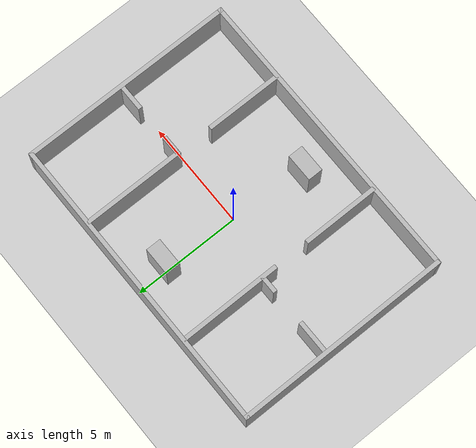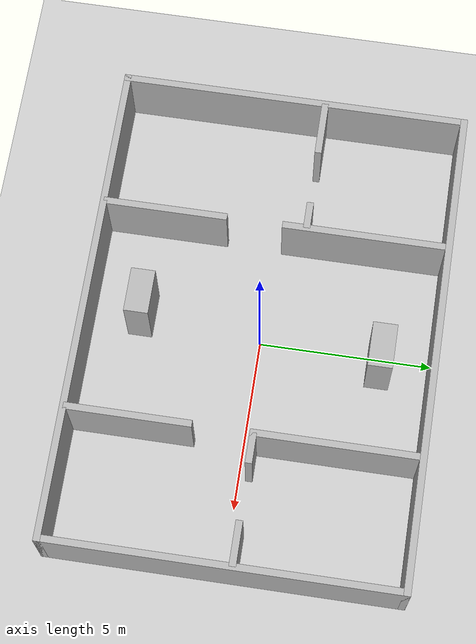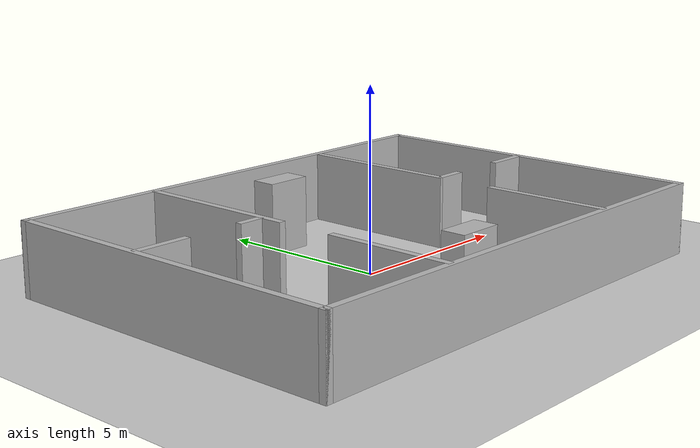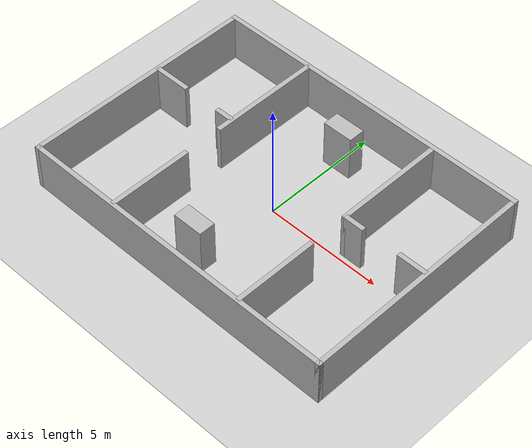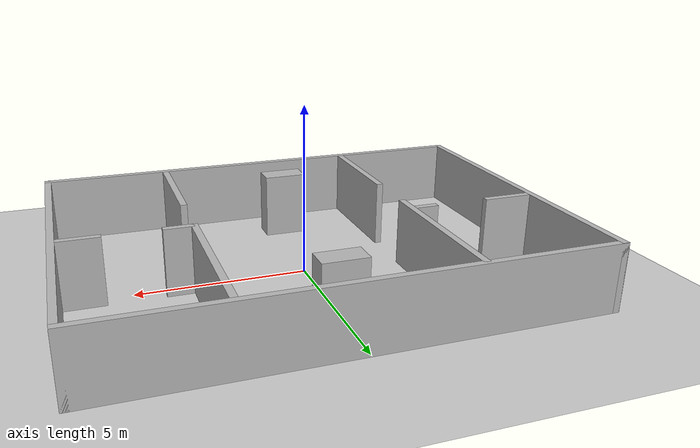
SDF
<sdf version='1.7'>
  <world name='mr3_validation_rooms'>
    <!-- mr3_box_layouts_v1; layout_seed=701; eval-only. -->
    <plugin name='gazebo_ros_state' filename='libgazebo_ros_state.so'>
      <ros><namespace>/gazebo</namespace></ros><update_rate>10.0</update_rate>
    </plugin>
    <include><uri>model://sun</uri></include>
    <include><uri>model://ground_plane</uri></include>
    <gravity>0 0 -9.8</gravity><physics type='ode'>
      <max_step_size>0.001</max_step_size><real_time_factor>1</real_time_factor>
      <real_time_update_rate>1000</real_time_update_rate></physics>
    <model name='task_geometry'><static>true</static><link name='boxes'>
      <collision name='north'><pose>0.000000 5.000000 1 0 0 0.000000</pose>
        <geometry><box><size>14.200000 0.200000 2</size></box></geometry></collision>
      <visual name='north_visual'><pose>0.000000 5.000000 1 0 0 0.000000</pose>
        <geometry><box><size>14.200000 0.200000 2</size></box></geometry></visual>
      <collision name='south'><pose>0.000000 -5.000000 1 0 0 0.000000</pose>
        <geometry><box><size>14.200000 0.200000 2</size></box></geometry></collision>
      <visual name='south_visual'><pose>0.000000 -5.000000 1 0 0 0.000000</pose>
        <geometry><box><size>14.200000 0.200000 2</size></box></geometry></visual>
      <collision name='east'><pose>7.000000 0.000000 1 0 0 0.000000</pose>
        <geometry><box><size>0.200000 10.200000 2</size></box></geometry></collision>
      <visual name='east_visual'><pose>7.000000 0.000000 1 0 0 0.000000</pose>
        <geometry><box><size>0.200000 10.200000 2</size></box></geometry></visual>
      <collision name='west'><pose>-7.000000 0.000000 1 0 0 0.000000</pose>
        <geometry><box><size>0.200000 10.200000 2</size></box></geometry></collision>
      <visual name='west_visual'><pose>-7.000000 0.000000 1 0 0 0.000000</pose>
        <geometry><box><size>0.200000 10.200000 2</size></box></geometry></visual>
      <collision name='left_partition_lower'><pose>-3.000000 -3.200000 1 0 0 0.000000</pose>
        <geometry><box><size>0.200000 3.600000 2</size></box></geometry></collision>
      <visual name='left_partition_lower_visual'><pose>-3.000000 -3.200000 1 0 0 0.000000</pose>
        <geometry><box><size>0.200000 3.600000 2</size></box></geometry></visual>
      <collision name='left_partition_upper'><pose>-3.000000 2.600000 1 0 0 0.000000</pose>
        <geometry><box><size>0.200000 4.800000 2</size></box></geometry></collision>
      <visual name='left_partition_upper_visual'><pose>-3.000000 2.600000 1 0 0 0.000000</pose>
        <geometry><box><size>0.200000 4.800000 2</size></box></geometry></visual>
      <collision name='right_partition_lower'><pose>3.250000 -3.200000 1 0 0 0.000000</pose>
        <geometry><box><size>0.200000 3.600000 2</size></box></geometry></collision>
      <visual name='right_partition_lower_visual'><pose>3.250000 -3.200000 1 0 0 0.000000</pose>
        <geometry><box><size>0.200000 3.600000 2</size></box></geometry></visual>
      <collision name='right_partition_upper'><pose>3.250000 2.600000 1 0 0 0.000000</pose>
        <geometry><box><size>0.200000 4.800000 2</size></box></geometry></collision>
      <visual name='right_partition_upper_visual'><pose>3.250000 2.600000 1 0 0 0.000000</pose>
        <geometry><box><size>0.200000 4.800000 2</size></box></geometry></visual>
      <collision name='left_room_west'><pose>-6.200000 0.900000 1 0 0 0.000000</pose>
        <geometry><box><size>1.600000 0.200000 2</size></box></geometry></collision>
      <visual name='left_room_west_visual'><pose>-6.200000 0.900000 1 0 0 0.000000</pose>
        <geometry><box><size>1.600000 0.200000 2</size></box></geometry></visual>
      <collision name='left_room_east'><pose>-3.400000 0.900000 1 0 0 0.000000</pose>
        <geometry><box><size>0.800000 0.200000 2</size></box></geometry></collision>
      <visual name='left_room_east_visual'><pose>-3.400000 0.900000 1 0 0 0.000000</pose>
        <geometry><box><size>0.800000 0.200000 2</size></box></geometry></visual>
      <collision name='right_room_west'><pose>3.687500 0.300000 1 0 0 0.000000</pose>
        <geometry><box><size>0.875000 0.200000 2</size></box></geometry></collision>
      <visual name='right_room_west_visual'><pose>3.687500 0.300000 1 0 0 0.000000</pose>
        <geometry><box><size>0.875000 0.200000 2</size></box></geometry></visual>
      <collision name='right_room_east'><pose>6.362500 0.300000 1 0 0 0.000000</pose>
        <geometry><box><size>1.275000 0.200000 2</size></box></geometry></collision>
      <visual name='right_room_east_visual'><pose>6.362500 0.300000 1 0 0 0.000000</pose>
        <geometry><box><size>1.275000 0.200000 2</size></box></geometry></visual>
      <collision name='north_cabinet'><pose>0.200000 3.500000 1 0 0 0.000000</pose>
        <geometry><box><size>1.300000 0.700000 2</size></box></geometry></collision>
      <visual name='north_cabinet_visual'><pose>0.200000 3.500000 1 0 0 0.000000</pose>
        <geometry><box><size>1.300000 0.700000 2</size></box></geometry></visual>
      <collision name='south_cabinet'><pose>-0.400000 -3.500000 1 0 0 0.000000</pose>
        <geometry><box><size>1.300000 0.700000 2</size></box></geometry></collision>
      <visual name='south_cabinet_visual'><pose>-0.400000 -3.500000 1 0 0 0.000000</pose>
        <geometry><box><size>1.300000 0.700000 2</size></box></geometry></visual>
    </link></model>
  </world>
</sdf>
